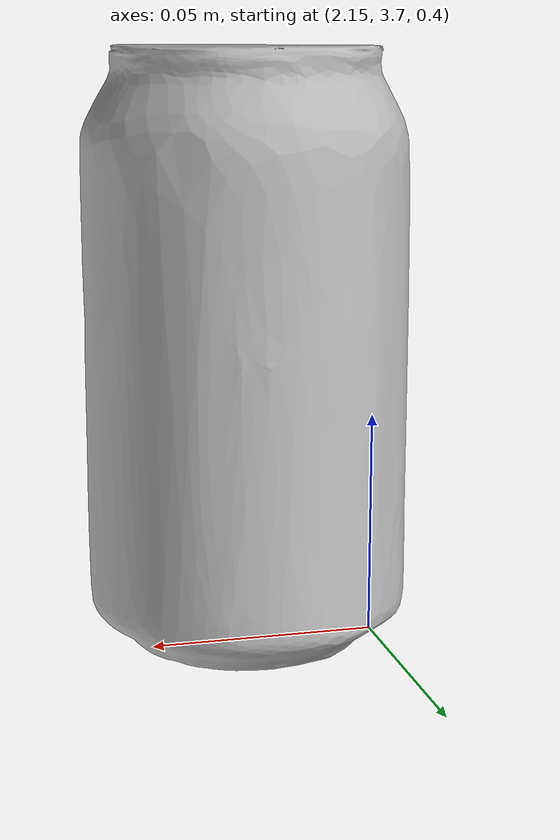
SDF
<?xml version="1.0" ?>
<sdf version="1.5">
  <model name="coke_can2">
 <pose>2.186415 3.718465 0.224409 0 0 0</pose>
    <link name="link">
      <inertial>
        <pose>0 0 0.06 0 0 0</pose>
        <mass>0.390</mass>
        <inertia>
          <ixx>0</ixx>
          <ixy>0</ixy>
          <ixz>0</ixz>
          <iyy>0</iyy>
          <iyz>0</iyz>
          <izz>0</izz>
        </inertia>
      </inertial>
      <collision name="collision">
        <geometry>
          <mesh>
            <uri>model://coke_can2/meshes/coke_can2.dae</uri>
          </mesh>
        </geometry>
        <surface>
          <friction>
            <ode>
              <mu>1.0</mu>
              <mu2>1.0</mu2>
            </ode>
          </friction>
          <contact>
            <ode>
              <kp>10000000.0</kp>
              <kd>1.0</kd>
              <min_depth>0.001</min_depth>
              <max_vel>0.1</max_vel>
            </ode>
          </contact>
        </surface>
      </collision>
      <visual name="visual">
        <geometry>
          <mesh>
            <uri>model://coke_can2/meshes/coke_can2.dae</uri>
          </mesh>
        </geometry>
      </visual>
    </link>
  </model>
</sdf>
